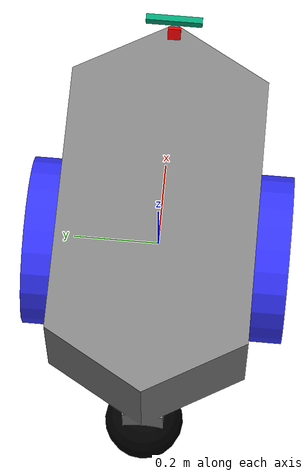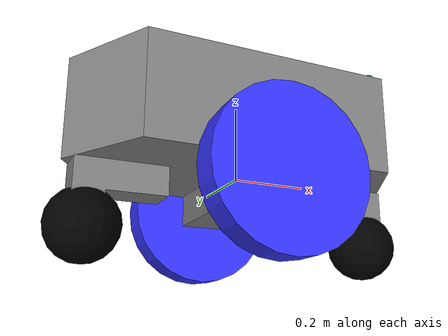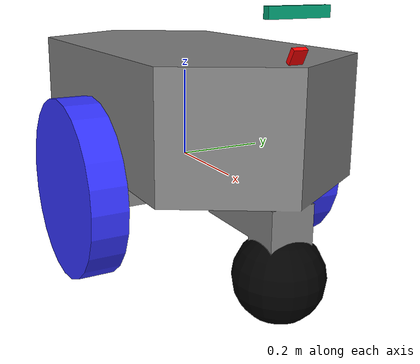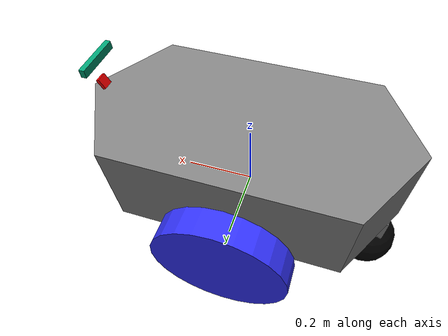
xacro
<?xml version="1.0"?>
<robot xmlns:xacro="http://www.ros.org/wiki/xacro"  name="robot">

    <xacro:include filename="robot_core.xacro"/>

    <xacro:include filename="gazebo_control.xacro"/>
    <xacro:include filename="camera.xacro"/>
    <xacro:include filename="imu.xacro"/>
    <xacro:include filename="depth_camera.xacro"/>
    <xacro:include filename="lidar.xacro"/>
    <!--xacro:include filename="gps.xacro"/-->
    <!--xacro:include filename="ground_truth.xacro"/-->

</robot>

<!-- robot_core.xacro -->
<robot xmlns:xacro="http://www.ros.org/wiki/xacro" >

    <xacro:property name="base_width" value="0.31"/>
    <xacro:property name="base_length" value="0.42"/>
    <xacro:property name="base_height" value="0.18"/>

    <xacro:include filename="inertial_macros.xacro"/>
    <xacro:property name="wheel_radius" value="0.10"/>
    <xacro:property name="wheel_width" value="0.04"/>
    <xacro:property name="wheel_ygap" value="0.025"/>
    <xacro:property name="wheel_zoff" value="0.05"/>
    <xacro:property name="wheel_xoff" value="0.12"/>

    <material name="white">
        <color rgba="1 1 1 1"/>
    </material>
    <material name="orange">
        <color rgba="1 0.3 0.1 1"/>
    </material>
    <material name="blue">
        <color rgba="0.2 0.2 1 1"/>
    </material>
    <material name="black">
        <color rgba="0 0 0 1"/>
    </material>
    <material name="red">
        <color rgba="1 0 0 1"/>
    </material>
    <material name="grey">
        <color rgba="0.5 0.5 0.5 1"/>
    </material>

    <!--START OF BASE LINK-->
    <link name="base_link">
    </link>
    <!--END OF BASE LINK-->

    <!-- Robot Footprint -->
    <link name="base_footprint"/>

    <joint name="base_joint" type="fixed">
        <parent link="base_link"/>
        <child link="base_footprint"/>
        <origin xyz="0.0 0.0 ${-(wheel_radius+wheel_zoff)}" rpy="0 0 0"/>
    </joint>

    <!--START OF CHASSIS LINK-->
    <joint name="chassis_joint" type="fixed">
        <parent link="base_link"/>
        <child link="chassis"/>
        <origin xyz="0 0 0"/>
    </joint>

    <!--START OF CHASSIS MODEL-->
    <link name="chassis">
        <visual>
            <origin xyz="0 0 0" rpy="0 0 0"/>
            <geometry>
                <mesh
			filename="file://$(find sim_ign)/custom_models/baseframe.STL"
                    scale="0.001 0.001 0.001"/>
            </geometry>
            <material name="grey"/>
        </visual>
        <collision>
            <origin xyz="0 0 0" rpy="0 0 0"/>
            <geometry>
                <mesh
			filename="file://$(find sim_ign)/custom_models/baseframe.STL"
                    scale="0.001 0.001 0.001"/>
            </geometry>
        </collision>
        <xacro:inertial_box mass="0.5" x="0.8636" y="0.4572" z="0.41021">
            <origin xyz="0 0 0" rpy="0 0 0"/>
        </xacro:inertial_box>
    </link>
    <!--END OF CHASSIS MODEL-->
    <!--END OF CHASSIS LINK-->

    <!--START OF LEFT WHEEL LINK-->
    <joint name="left_wheel_joint" type="continuous">
        <parent link="base_link"/>
        <child link="left_wheel"/>
        <origin xyz="0 0.2686 -0.04318" rpy="-${pi/2} 0 0"/>
        <axis xyz="0 0 1"/>
    </joint>

    <!--START OF LEFT WHEEL MODEL-->
    <link name="left_wheel">
        <visual>
            <geometry>
                <cylinder radius="0.2" length="0.08"/>
            </geometry>
            <material name="blue"/>
        </visual>
        <collision>
            <geometry>
                <cylinder radius="0.2" length="0.08"/>
            </geometry>
        </collision>
        <xacro:inertial_cylinder mass="0.1" length="0.08" radius="0.2">
            <origin xyz="0 0 0" rpy="0 0 0"/>
        </xacro:inertial_cylinder>
    </link>
    <!--END OF LEFT WHEEL MODEL-->
    <!--END OF LEFT WHEEL LINK-->

    <!--START OF RIGHT WHEEL LINK-->
    <joint name="right_wheel_joint" type="continuous">
        <parent link="base_link"/>
        <child link="right_wheel"/>
        <origin xyz="0 -0.2686 -0.04318" rpy="${pi/2} 0 0"/>
        <axis xyz="0 0 -1"/>
    </joint>

    <!--START OF RIGHT WHEEL MODEL-->
    <link name="right_wheel">
        <visual>
            <geometry>
                <cylinder radius="0.2" length="0.08"/>
            </geometry>
            <material name="blue"/>
        </visual>
        <collision>
            <geometry>
                <cylinder radius="0.2" length="0.08"/>
            </geometry>
        </collision>
        <xacro:inertial_cylinder mass="0.1" length="0.08" radius="0.2">
            <origin xyz="0 0 0" rpy="0 0 0"/>
        </xacro:inertial_cylinder>
    </link>
    <!--END OF RIGHT WHEEL MODEL-->
    <!--END OF RIGHT WHEEL LINK-->

    <!--START OF FRONT CASTER WHEEL LINK-->
    <joint name="frontcaster_wheel_joint" type="fixed">
        <parent link="chassis"/>
        <child link="frontcaster_wheel"/>
        <origin xyz="0.39116 0 -0.15113" rpy="0 0 0"/>
    </joint>

    <!--START OF FRONT CASTER WHEEL MODEL-->
    <link name="frontcaster_wheel">
        <visual>
            <geometry>
                <sphere radius="0.09205" />
            </geometry>
            <material name="black"/>
        </visual>
        <collision>
            <geometry>
                <sphere radius="0.09205" />
            </geometry>
        </collision>
        <xacro:inertial_sphere mass="0.1" radius="0.09205">
            <origin xyz="0 0 0" rpy="0 0 0"/>
        </xacro:inertial_sphere>
    </link>

    <gazebo reference="frontcaster_wheel">
        <mu1 value="0.001"/>
        <mu2 value="0.001"/>
    </gazebo>
    <!--END OF FRONT CASTER WHEEL MODEL-->
    <!--END OF FRONT CASTER WHEEL LINK-->

    <!--START OF BACK CASTER WHEEL LINK-->
    <joint name="backcaster_wheel_joint" type="fixed">
        <parent link="chassis"/>
        <child link="backcaster_wheel"/>
        <origin xyz="-0.39116 0 -0.15113" rpy="0 0 0"/>
    </joint>

    <!--START OF BACK CASTER WHEEL MODEL-->
    <link name="backcaster_wheel">
        <visual>
            <geometry>
                <sphere radius="0.09205" />
            </geometry>
            <material name="black"/>
        </visual>
        <collision>
            <geometry>
                <sphere radius="0.09205" />
            </geometry>
        </collision>
        <xacro:inertial_sphere mass="0.1" radius="0.09205">
            <origin xyz="0 0 0" rpy="0 0 0"/>
        </xacro:inertial_sphere>
    </link>

    <gazebo reference="backcaster_wheel">
        <mu1 value="0.001"/>
        <mu2 value="0.001"/>
    </gazebo>
    <!--END OF BACK CASTER WHEEL MODEL-->
    <!--END OF BACK CASTER WHEEL LINK-->

</robot>

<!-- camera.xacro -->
<robot xmlns:xacro="http://www.ros.org/wiki/xacro" >

    <joint name="camera_joint" type="fixed">
        <parent link="chassis"/>
        <child link="camera_link"/>
        <origin xyz="0.4191 0 0.275" rpy="0 0.485 0"/>
    </joint>

    <link name="camera_link">
        <visual>
            <geometry>
                <box size="0.010 0.03 0.03"/>
            </geometry>
            <material name="red"/>
        </visual>
        <inertial>
            <mass value="0.1"/>
            <origin xyz="0 0 0" rpy="0 0 0"/>
            <inertia ixx="0.0001" ixy="0.0" ixz="0.0" iyy="0.00001" iyz="0.0" izz="0.00001"/>
        </inertial>
    </link>

    <joint name="camera_optical_joint" type="fixed">
        <parent link="camera_link"/>
        <child link="camera_link_optical"/>
        <origin xyz="0 0 0" rpy="${-pi/2} 0 ${-pi/2}"/>
    </joint>

    <link name="camera_link_optical"></link>

    <gazebo reference="camera_link">
        <sensor name="camera" type="rgbd_camera">
            <pose>0 0 0 0 0 0</pose>
            <always_on>true</always_on>
            <visualize>true</visualize>
            <update_rate>10</update_rate>
            <topic>camera</topic>
            <gz_frame_id>camera_link_optical</gz_frame_id>
            <camera>
                <horizontal_fov>1.089</horizontal_fov>
                <image>
                    <format>R8G8B8</format>
                    <width>640</width>
                    <height>480</height>
                </image>
                <clip>
                    <near>0.05</near>
                    <far>20.0</far>
                </clip>
            </camera>
        </sensor>
    </gazebo>

</robot>

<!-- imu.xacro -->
<robot xmlns:xacro="http://www.ros.org/wiki/xacro">

    <xacro:include filename="inertial_macros.xacro"/>

    <link name='imu_link'>
        <visual name="imu_link_visual">
            <geometry>
                <box size="0.1 0.1 0.1"/>
            </geometry>
        </visual>

        <collision name="imu_link_collision">
            <geometry>
                <box size="0.1 0.1 0.1"/>
            </geometry>
        </collision>

        <xacro:inertial_box mass="0.5" x="0.8636" y="0.4572" z="0.41021">
            <origin xyz="0 0 0" rpy="0 0 0"/>
        </xacro:inertial_box>
    </link>

    <joint name='imu_joint' type='fixed'>
        <parent link="base_link"/>
        <child link="imu_link"/>
        <origin xyz="0.0 0.0 0.01" rpy="0 0 0"/>
    </joint>

    <!-- Classic libgazebo_ros_imu_sensor.so -> Fortress imu sensor.
         Picked up by the world-level ignition-gazebo-imu-system and
         published to the 'imu' Ignition topic; bridged to /imu. -->
    <gazebo reference="imu_link">
        <sensor name="imu_sensor" type="imu">
            <always_on>true</always_on>
            <update_rate>100</update_rate>
            <visualize>true</visualize>
            <topic>imu</topic>
            <gz_frame_id>imu_link</gz_frame_id>
            <imu>
                <angular_velocity>
                    <x>
                        <noise type="gaussian">
                            <mean>0.0</mean>
                            <stddev>2e-4</stddev>
                            <bias_mean>0.0000075</bias_mean>
                            <bias_stddev>0.0000008</bias_stddev>
                        </noise>
                    </x>
                    <y>
                        <noise type="gaussian">
                            <mean>0.0</mean>
                            <stddev>2e-4</stddev>
                            <bias_mean>0.0000075</bias_mean>
                            <bias_stddev>0.0000008</bias_stddev>
                        </noise>
                    </y>
                    <z>
                        <noise type="gaussian">
                            <mean>0.0</mean>
                            <stddev>2e-4</stddev>
                            <bias_mean>0.0000075</bias_mean>
                            <bias_stddev>0.0000008</bias_stddev>
                        </noise>
                    </z>
                </angular_velocity>
                <linear_acceleration>
                    <x>
                        <noise type="gaussian">
                            <mean>0.0</mean>
                            <stddev>1.7e-2</stddev>
                            <bias_mean>0.1</bias_mean>
                            <bias_stddev>0.001</bias_stddev>
                        </noise>
                    </x>
                    <y>
                        <noise type="gaussian">
                            <mean>0.0</mean>
                            <stddev>1.7e-2</stddev>
                            <bias_mean>0.1</bias_mean>
                            <bias_stddev>0.001</bias_stddev>
                        </noise>
                    </y>
                    <z>
                        <noise type="gaussian">
                            <mean>0.0</mean>
                            <stddev>1.7e-2</stddev>
                            <bias_mean>0.1</bias_mean>
                            <bias_stddev>0.001</bias_stddev>
                        </noise>
                    </z>
                </linear_acceleration>
            </imu>
        </sensor>
    </gazebo>

</robot>

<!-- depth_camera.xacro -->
<robot xmlns:xacro="http://www.ros.org/wiki/xacro">

    <link name="depth_camera_link">
    <visual>
        <origin xyz="0 0 0" rpy="0 0 0"/>
        <geometry>
        <box size="0.015 0.130 0.022"/>
        </geometry>
    </visual>

    <collision>
        <origin xyz="0 0 0" rpy="0 0 0"/>
        <geometry>
        <box size="0.015 0.130 0.022"/>
        </geometry>
    </collision>

    <inertial>
        <origin xyz="0 0 0" rpy="0 0 0"/>
        <mass value="0.035"/>
        <inertia ixx="0.001"  ixy="0"  ixz="0" iyy="0.001" iyz="0" izz="0.001" />
    </inertial>
    </link>

    <joint name="depth_camera_joint" type="fixed">
    <parent link="base_link"/>
    <child link="depth_camera_link"/>
    <origin xyz="0.415 0 0.35" rpy="0 0 0"/>
    </joint>

    <link name="camera_depth_frame"/>

    <joint name="camera_depth_joint" type="fixed">
    <origin xyz="0 0 0" rpy="${-pi/2} 0 ${-pi/2}"/>
    <parent link="depth_camera_link"/>
    <child link="camera_depth_frame"/>
    </joint>

    <gazebo reference="depth_camera_link">
    <sensor name="depth_camera" type="depth_camera">
        <always_on>true</always_on>
        <visualize>true</visualize>
        <update_rate>30.0</update_rate>
        <topic>depth_camera</topic>
        <gz_frame_id>camera_depth_frame</gz_frame_id>
        <camera name="camera">
        <horizontal_fov>1.047198</horizontal_fov>
        <image>
            <width>640</width>
            <height>480</height>
            <format>B8G8R8</format>
        </image>
        <clip>
            <near>0.05</near>
            <far>3</far>
        </clip>
        </camera>
    </sensor>
    </gazebo>

</robot>

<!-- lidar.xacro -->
<robot xmlns:xacro="http://www.ros.org/wiki/xacro">

    <link name="lidar_link">
    <inertial>
        <origin xyz="0 0 1" rpy="0 0 0"/>
        <mass value="0.125"/>
        <inertia ixx="0.001"  ixy="0"  ixz="0" iyy="0.001" iyz="0" izz="0.001" />
    </inertial>

    <collision>
        <origin xyz="0 0 0" rpy="0 0 0"/>
        <geometry>
        <cylinder radius="0.0508" length="0.055"/>
        </geometry>
    </collision>

    <visual>
        <origin xyz="0 0 0" rpy="0 0 0"/>
        <geometry>
        <cylinder radius="0.0508" length="0.055"/>
        </geometry>
    </visual>
    </link>

    <joint name="lidar_joint" type="fixed">
    <parent link="base_link"/>
    <child link="lidar_link"/>
    <origin xyz="0 0 0.12" rpy="0 0 0"/>
    </joint>

    <gazebo reference="lidar_link">
    <sensor name="lidar" type="gpu_lidar">
        <always_on>true</always_on>
        <visualize>true</visualize>
        <update_rate>10</update_rate>
        <topic>lidar</topic>
        <gz_frame_id>lidar_link</gz_frame_id>
        <lidar>
        <scan>
            <horizontal>
            <samples>360</samples>
            <resolution>1.000000</resolution>
            <min_angle>-3.141593</min_angle>
            <max_angle>3.141593</max_angle>
            </horizontal>
            <vertical>
            <samples>16</samples>
            <resolution>1.000000</resolution>
            <min_angle>-0.261799</min_angle>
            <max_angle>0.261799</max_angle>
            </vertical>
        </scan>
        <range>
            <min>0.120000</min>
            <max>30.0</max>
            <resolution>0.015000</resolution>
        </range>
        </lidar>
    </sensor>
    </gazebo>

</robot>
